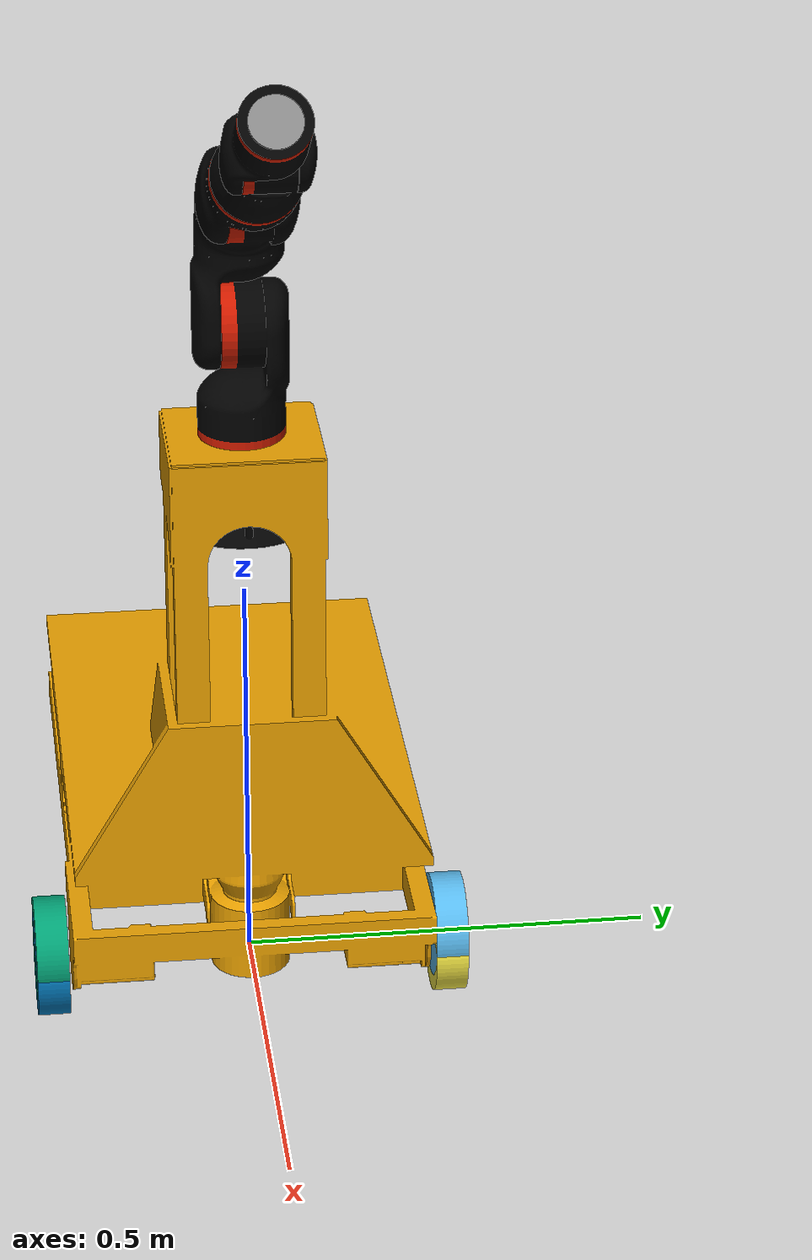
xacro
<?xml version="1.0"?>
<robot xmlns:xacro="http://www.ros.org/wiki/xacro"
       name="rebel_on_platform" >

  <!-- Controller settings -->
  <xacro:arg name="hardware_protocol" default="cri"/>

  <xacro:arg name="rebel_version" default="01" />

  <xacro:arg name="continuous_last_joint" default="false" />
  <xacro:arg name="prefix" default="" />

  <xacro:arg name="gripper" default="none" />

  <xacro:include filename="$(find irc_ros_description)/urdf/serviceRobots/rebel_on_platform.macro.xacro"/>
  <xacro:rebel_on_platform prefix="" continuous_last_joint="$(arg continuous_last_joint)" rebel_version="'01'"  hardware_protocol="$(arg hardware_protocol)" />

</robot>

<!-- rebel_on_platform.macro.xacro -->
<robot xmlns:xacro="http://www.ros.org/wiki/xacro"
       name="rebel_on_platform" >

  <xacro:include filename="$(find irc_ros_description)/urdf/serviceRobots/rebel_on_platform.description.xacro" />
  <xacro:include filename="$(find irc_ros_description)/urdf/serviceRobots/rebel_on_platform.ros2_control.xacro" />

  <xacro:macro name="rebel_on_platform" params="prefix hardware_protocol continuous_last_joint rebel_version">
      <xacro:rebel_on_platform_description prefix="${prefix}" continuous_last_joint="${continuous_last_joint}" />
      <xacro:rebel_on_platform_ros2_control prefix="${prefix}" hardware_protocol="${hardware_protocol}" continuous_last_joint="${continuous_last_joint}" />
  </xacro:macro>
</robot>

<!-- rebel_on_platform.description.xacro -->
<robot xmlns:xacro="http://www.ros.org/wiki/xacro"
       name="rebel_on_platform" >

  <xacro:macro name="rebel_on_platform_description" params="prefix continuous_last_joint">
    <xacro:property name="base_height" value="0.05"/>
    <xacro:property name="wheel_radius" value="0.07308"/>

    <link name="${prefix}base_link">
      <visual>
        <geometry>
          <mesh filename="file://$(find irc_ros_description)/meshes/cpr_platform_medium/body.dae"/>
        </geometry>
        <origin rpy="0 0 3.14" xyz="0 0 0"/>
      </visual>
      <collision>
        <geometry>
          <mesh filename="file://$(find irc_ros_description)/meshes/cpr_platform_medium/bodyColl.dae"/>
        </geometry>
        <origin rpy="0 0 ${pi}" xyz="0 0 0"/>
      </collision>
      <inertial>
        <mass value="1.0"/>
        <inertia ixx="1.0" ixy="0.0" ixz="0.0" iyy="1.0" iyz="0.0" izz="1.0"/>
      </inertial>
    </link>

    <joint name="${prefix}joint_wheel_1" type="continuous">
      <parent link="${prefix}base_link"/>
      <child link="${prefix}wheel_1"/>
      <origin rpy="0.0 0.0 0.0" xyz="0.0 0.25 0.011"/>
      <axis xyz="0 -1 0"/>
    </joint>
    <link name="${prefix}wheel_1">
      <visual>
        <geometry>
          <mesh filename="file://$(find irc_ros_description)/meshes/cpr_platform_medium/wheel.dae"/>
        </geometry>
      </visual>
      <collision>
        <geometry>
          <mesh filename="file://$(find irc_ros_description)/meshes/cpr_platform_medium/wheelColl.dae"/>
        </geometry>
      </collision>
      <inertial>
        <mass value="0.1"/>
        <inertia ixx="0.03" ixy="0.0" ixz="0.0" iyy="0.03" iyz="0.0" izz="0.03"/>
      </inertial>
    </link>

    <joint name="${prefix}joint_wheel_2" type="continuous">
      <parent link="${prefix}base_link"/>
      <child link="${prefix}wheel_2"/>
      <origin rpy="0.0 0.0 0.0" xyz="0.0 -0.25 0.011"/>
      <axis xyz="0 -1 0"/>
    </joint>
    <link name="${prefix}wheel_2">
      <visual>
        <geometry>
          <mesh filename="file://$(find irc_ros_description)/meshes/cpr_platform_medium/wheel.dae"/>
        </geometry>
      </visual>
      <collision>
        <geometry>
          <mesh filename="file://$(find irc_ros_description)/meshes/cpr_platform_medium/wheelColl.dae"/>
        </geometry>
      </collision>
      <inertial>
        <mass value="0.1"/>
        <inertia ixx="0.03" ixy="0.0" ixz="0.0" iyy="0.03" iyz="0.0" izz="0.03"/>
      </inertial>
    </link>

    <joint name="${prefix}joint_wheel_3" type="continuous">
      <parent link="${prefix}base_link"/>
      <child link="${prefix}wheel_3"/>
      <origin rpy="0.0 0.0 0.0" xyz="0.0 0.25 -0.011"/>
      <axis xyz="0 -1 0"/>
    </joint>
    <link name="${prefix}wheel_3">
      <visual>
        <geometry>
          <mesh filename="file://$(find irc_ros_description)/meshes/cpr_platform_medium/wheel.dae"/>
        </geometry>
      </visual>
      <collision>
        <geometry>
          <mesh filename="file://$(find irc_ros_description)/meshes/cpr_platform_medium/wheelColl.dae"/>
        </geometry>
      </collision>
      <inertial>
        <mass value="0.1"/>
        <inertia ixx="0.03" ixy="0.0" ixz="0.0" iyy="0.03" iyz="0.0" izz="0.03"/>
      </inertial>
    </link>

    <joint name="${prefix}joint_wheel_4" type="continuous">
      <parent link="${prefix}base_link"/>
      <child link="${prefix}wheel_4"/>
      <origin rpy="0.0 0.0 0.0" xyz="0.0 -0.25 -0.011"/>
      <axis xyz="0 -1 0"/>
    </joint>
    <link name="${prefix}wheel_4">
      <visual>
        <geometry>
          <mesh filename="file://$(find irc_ros_description)/meshes/cpr_platform_medium/wheel.dae"/>
        </geometry>
      </visual>
      <collision>
        <geometry>
          <mesh filename="file://$(find irc_ros_description)/meshes/cpr_platform_medium/wheelColl.dae"/>
        </geometry>
      </collision>
      <inertial>
        <mass value="0.1"/>
        <inertia ixx="0.03" ixy="0.0" ixz="0.0" iyy="0.03" iyz="0.0" izz="0.03"/>
      </inertial>
    </link>

    <joint name="platform_to_rebel" type="fixed">
      <parent link="base_link" />
      <child link="rebel_1_base_link" />
      <origin xyz="0.0 0.0 ${0.7-0.1}" rpy="0.0 0.0 0.0" />
    </joint>

    <!-- REBEL ARM -->
    <link name="${prefix}rebel_1_base_link">
      <visual>
        <geometry>
          <mesh filename="file://$(find irc_ros_description)/meshes/igus_rebel_6dof_00/Joint0.dae"/>
        </geometry>
      </visual>
      <collision>
        <geometry>
          <mesh filename="file://$(find irc_ros_description)/meshes/igus_rebel_6dof_00/Joint0Coll.dae"/>
        </geometry>
      </collision>
      <inertial>
        <mass value="1.0"/>
        <inertia ixx="1.0" ixy="0.0" ixz="0.0" iyy="1.0" iyz="0.0" izz="1.0"/>
      </inertial>
    </link>
    <joint name="${prefix}joint1" type="revolute">
      <parent link="${prefix}rebel_1_base_link"/>
      <child link="${prefix}link_1"/>
      <origin rpy="0.0 0.0 0.0" xyz="0.0 0 0.100"/>
      <axis xyz="0 0 -1"/>
      <limit effort="330.0" lower="${-pi*179/180}" upper="${pi*179/180}" velocity="${pi*45/180}"/>
    </joint>
    <link name="${prefix}link_1">
      <visual>
        <geometry>
          <mesh filename="file://$(find irc_ros_description)/meshes/igus_rebel_6dof_00/Joint1.dae"/>
        </geometry>
        <origin rpy="0 0 0" xyz="0 0 0"/>
      </visual>
      <collision>
        <geometry>
          <mesh filename="file://$(find irc_ros_description)/meshes/igus_rebel_6dof_00/Joint1Coll.dae"/>
        </geometry>
        <origin rpy="0 0 0" xyz="0 0 0"/>
      </collision>
      <inertial>
        <mass value="0.1"/>
        <inertia ixx="0.03" ixy="0.0" ixz="0.0" iyy="0.03" iyz="0.0" izz="0.03"/>
      </inertial>
    </link>
    <joint name="${prefix}joint2" type="revolute">
      <parent link="${prefix}link_1"/>
      <child link="${prefix}link_2"/>
      <origin rpy="0.0 ${pi/6} 0.0" xyz="0.0 0 0.149"/>
      <axis xyz="0 1 0"/>
      <!-- pi*2/3 are the physical limits, but to avoid any collisions we set the actual limits lower -->
      <limit effort="330.0" lower="${-pi*11/18}" upper="${pi*11/18}" velocity="${pi*45/180}"/>
    </joint>
    <link name="${prefix}link_2">
      <visual>
        <geometry>
          <mesh filename="file://$(find irc_ros_description)/meshes/igus_rebel_6dof_00/Joint2.dae"/>
        </geometry>
        <origin rpy="0 0 0" xyz="0 0 0"/>
      </visual>
      <collision>
        <geometry>
          <mesh filename="file://$(find irc_ros_description)/meshes/igus_rebel_6dof_00/Joint2Coll.dae"/>
        </geometry>
        <origin rpy="0 0 0" xyz="0 0 0"/>
      </collision>
      <inertial>
        <mass value="0.1"/>
        <inertia ixx="0.03" ixy="0.0" ixz="0.0" iyy="0.03" iyz="0.0" izz="0.03"/>
      </inertial>
    </link>
    <joint name="${prefix}joint3" type="revolute">
      <parent link="${prefix}link_2"/>
      <child link="${prefix}link_5"/>
      <origin rpy="0.0 ${pi/6} 0.0" xyz="0.0 0.0 0.2384"/>
      <axis xyz="0 1 0"/>
      <!-- pi*2/3 are the physical limits, but to avoid any collisions we set the actual limits lower -->
      <limit effort="330.0" lower="${-pi*11/18}" upper="${pi*11/18}" velocity="${pi*45/180}"/>
    </joint>
    <link name="${prefix}link_5">
      <visual>
        <geometry>
          <mesh filename="file://$(find irc_ros_description)/meshes/igus_rebel_6dof_00/Joint3.dae"/>
        </geometry>
        <origin rpy="0 0 0" xyz="0 0 0"/>
      </visual>
      <collision>
        <geometry>
          <mesh filename="file://$(find irc_ros_description)/meshes/igus_rebel_6dof_00/Joint3Coll.dae"/>
        </geometry>
        <origin rpy="0 0 0" xyz="0 0 0"/>
      </collision>
      <inertial>
        <mass value="0.1"/>
        <inertia ixx="0.03" ixy="0.0" ixz="0.0" iyy="0.03" iyz="0.0" izz="0.03"/>
      </inertial>
    </link>
    <joint name="${prefix}joint4" type="revolute">
      <parent link="${prefix}link_5"/>
      <child link="${prefix}link_6"/>
      <!-- TODO The 0.03m offset are most likely caused by the mesh file (Issue 15)-->
      <origin rpy="0.0 0.0 0.0" xyz="0.0 0 ${0.149 - 0.03}"/>
      <axis xyz="0 0 1"/>
      <limit effort="330.0" lower="${-pi*179/180}" upper="${pi*179/180}" velocity="${pi*45/180}"/>
    </joint>
    <link name="${prefix}link_6">
      <visual>
        <geometry>
          <mesh filename="file://$(find irc_ros_description)/meshes/igus_rebel_6dof_00/Joint4.dae"/>
        </geometry>
        <origin rpy="0 0 0" xyz="0 0 0"/>
      </visual>
      <collision>
        <geometry>
          <mesh filename="file://$(find irc_ros_description)/meshes/igus_rebel_6dof_00/Joint4Coll.dae"/>
        </geometry>
        <origin rpy="0 0 0" xyz="0 0 0"/>
      </collision>
      <inertial>
        <mass value="0.1"/>
        <inertia ixx="0.03" ixy="0.0" ixz="0.0" iyy="0.03" iyz="0.0" izz="0.03"/>
      </inertial>
    </link>
    <joint name="${prefix}joint5" type="revolute">
      <parent link="${prefix}link_6"/>
      <child link="${prefix}link_7"/>
      <!-- TODO The 0.03m offset are most likely caused by the mesh file (Issue 15) -->
      <origin rpy="0.0 ${-pi/24} 0.0" xyz="0.0 0 ${0.14 + 0.03}"/>
      <axis xyz="0 1 0"/>
      <limit effort="330.0" lower="${-pi*19/36 + pi/24}" upper="${pi*19/36 + pi/24}" velocity="${pi*45/180}"/>
    </joint>
    <link name="${prefix}link_7">
      <visual>
        <geometry>
          <mesh filename="file://$(find irc_ros_description)/meshes/igus_rebel_6dof_00/Joint5.dae"/>
        </geometry>
        <origin rpy="0 0 0" xyz="0 0 0"/>
      </visual>
      <collision>
        <geometry>
          <mesh filename="file://$(find irc_ros_description)/meshes/igus_rebel_6dof_00/Joint5Coll.dae"/>
        </geometry>
        <origin rpy="0 0 0" xyz="0 0 0"/>
      </collision>
      <inertial>
        <mass value="0.1"/>
        <inertia ixx="0.03" ixy="0.0" ixz="0.0" iyy="0.03" iyz="0.0" izz="0.03"/>
      </inertial>
    </link>
    <xacro:if value="${continuous_last_joint}">
    <joint name="${prefix}joint6" type="continuous">
        <parent link="${prefix}link_7"/>
        <child link="${prefix}link_8"/>
        <origin rpy="0.0 0.0 0.0" xyz="0.0 0 0.1208"/>
        <axis xyz="0 0 1"/>
        <limit effort="330.0" velocity="${pi*45/180}"/>
      </joint>
    </xacro:if>
    <xacro:unless value="${continuous_last_joint}">
      <joint name="${prefix}joint6" type="revolute">
        <parent link="${prefix}link_7"/>
        <child link="${prefix}link_8"/>
        <origin rpy="0.0 0.0 0.0" xyz="0.0 0 0.1208"/>
        <axis xyz="0 0 1"/>
        <limit effort="330.0" lower="${-pi*179/180}" upper="${pi*179/180}" velocity="${pi*45/180}"/>
      </joint>
    </xacro:unless>
    <link name="${prefix}link_8">
      <visual>
        <geometry>
          <mesh filename="file://$(find irc_ros_description)/meshes/igus_rebel_6dof_00/Joint6.dae"/>
        </geometry>
        <origin rpy="0 0 0" xyz="0.0 0 0"/>
      </visual>
      <collision>
        <geometry>
          <mesh filename="file://$(find irc_ros_description)/meshes/igus_rebel_6dof_00/Joint6Coll.dae"/>
        </geometry>
        <origin rpy="0 0 0" xyz="0.0 0 0"/>
      </collision>
      <inertial>
        <mass value="0.1"/>
        <inertia ixx="0.03" ixy="0.0" ixz="0.0" iyy="0.03" iyz="0.0" izz="0.03"/>
      </inertial>
    </link>
    <joint name="${prefix}joint7" type="fixed">
      <parent link="${prefix}link_8"/>
      <child link="${prefix}flange"/>
      <origin rpy="0.0 ${-pi/2} 0.0" xyz="0.0 0 0.0012"/>
      <axis xyz="0 0 0"/>
    </joint>
    <link name="${prefix}flange">
    </link>
    <joint name="${prefix}flange_to_tool0" type="fixed">
      <parent link="${prefix}flange"/>
      <child link="${prefix}tool0"/>
      <origin rpy="0.0 0.0 0.0" xyz="0.0 0.0 0.0"/>
      <axis xyz="0 0 0"/>
    </joint>
    <link name="${prefix}tool0">
    </link>
  </xacro:macro>
</robot>
